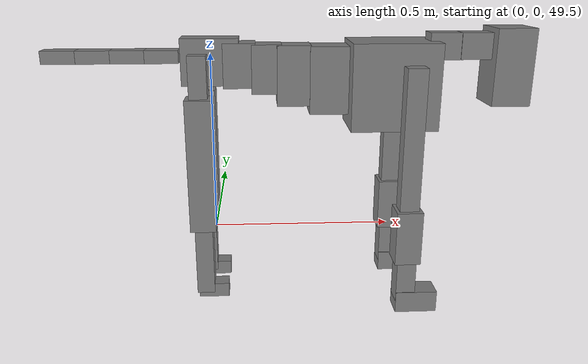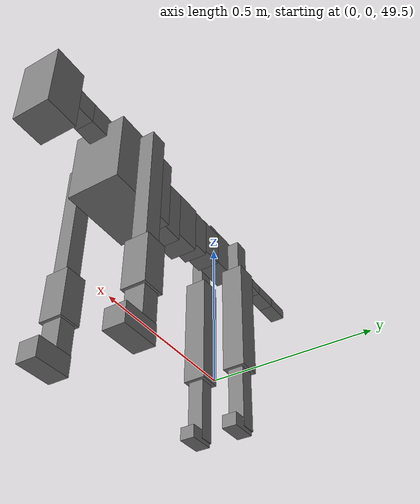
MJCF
<mujoco model="dog">

    <default>
        <joint armature="0.02" stiffness="1" damping="0.2" limited="true"/>
        <geom condim="3" friction="1 0.05 0.05" margin="0.01"/>
        <motor ctrllimited="true" ctrlrange="-1.0 1.0" forcelimited="true" gear="50"/>
    </default>

    <compiler inertiafromgeom="true" angle="radian"/>

    <option timestep="0.016" iterations="50" tolerance="1e-10" solver="Newton" jacobian="dense" cone="pyramidal"/>

    <size nconmax="20000" njmax="60000" nstack="5000000"/>
    <visual>
        <map force="0.1" zfar="30"/>
        <rgba haze="0.15 0.25 0.35 1"/>
        <quality shadowsize="2048"/>
        <global offwidth="800" offheight="800"/>
    </visual>

    <asset>
        <texture type="skybox" builtin="gradient" rgb1="0.3 0.5 0.7" rgb2="0 0 0" width="512" height="512"/>
        <texture name="texplane" type="2d" builtin="checker" rgb1=".2 .3 .4" rgb2=".1 0.15 0.2" width="512" height="512"
                 mark="cross" markrgb=".8 .8 .8"/>
        <texture name="texgeom" type="cube" builtin="flat" mark="cross" width="127" height="1278" rgb1="0.8 0.6 0.4"
                 rgb2="0.8 0.6 0.4" markrgb="1 1 1" random="0.01"/>

        <material name="matplane" reflectance="0.3" texture="texplane" texrepeat="1 1" texuniform="true"/>
        <material name="matgeom" texture="texgeom" texuniform="true" rgba="0.8 0.6 .4 1"/>
    </asset>

    <worldbody>
        <geom name="floor" pos="0 0 0" size="0 0 .25" type="plane" material="matplane" condim="3"/>

        <light directional="false" diffuse=".2 .2 .2" specular="0 0 0" pos="0 0 5" dir="0 0 -1" castshadow="false"/>
        <light mode="targetbodycom" target="torso" directional="false" diffuse=".8 .8 .8" specular="0.3 0.3 0.3"
               pos="0 0 4.0" dir="0 0 -1"/>

        <body name="root" pos="0 0 50">
            <freejoint name="root_1"/>
            <geom type="box" pos="0 0 -0.02" size="0.0774  0.0358  0.063" density="2030"/>

            <body name="spine1" pos="0.054 0 0">
                <joint name="spine1_y" axis="0 1 0" range="0 0.7" limited="true"/>
                <geom type="box" pos="0.02375 0 -0.03" size="0.04375  0.0375  0.05985" density="2030"/>

                <body name="spine2" pos="0.0612 0 0">
                    <joint name="spine2_y" axis="0 1 0" range="-0.15 0.15" limited="true"/>
                    <geom type="box" pos="0.03555  0  -0.04" size="0.04055  0.039  0.06615" density="2030"/>

                    <body name="spine3" pos="0.0730 0 0">
                        <joint name="spine3_y" axis="0 1 0" range="-0.15 0.15" limited="true"/>
                        <geom type="box" pos="0.03555  0  -0.057" size="0.04555  0.0445  0.081" density="2030"/>

                        <body name="spine4" pos="0.0780 0 0">
                            <joint name="spine4_y" axis="0 1 0" range="-0.15 0.15" limited="true"/>
                            <geom type="box" pos="0.05265  0  -0.07" size="0.05265  0.045  0.09135" density="2030"/>

                            <body name="torso" pos="0.1082 0 0">
                                <joint name="torso_y" axis="0 1 0" range="-0.15 0.15" limited="true"/>
                                <geom type="box" pos="0.11925  0  -0.085" size="0.11925  0.085  0.11745"
                                      density="2030"/>

                                <body name="neck1" pos="0.2160  0   0.0180">
                                    <joint name="neck1_y" axis="0 1 0" range="-1.2  -1" limited="true"/>
                                    <geom type="box" pos="0.0423  0  0" size="0.0423  0.03  0.036" density="2325"/>

                                    <body name="neck2" pos="0.0853  0  0">
                                        <joint name="neck2_y" axis="0 1 0" range="0.1  0" limited="true"/>
                                        <geom type="box" pos="0.0423  0  0" size="0.0423  0.03  0.036" density="2325"/>

                                        <body name="head" pos="0.0853  0  0">
                                            <joint name="head_y" axis="0 1 0" range="-0.3  -0.2" limited="true"/>
                                            <geom type="box" pos="0.0531  0  -0.055" size="0.0531  0.06  0.1044"
                                                  density="4030"/>

                                        </body>
                                    </body>
                                </body>

                                <body name="front_shoulder" pos="0.156  0   -0.0480">
                                    <joint name="front_shoulder_y" axis="0 1 0" range="-1 1.5" limited="true"/>
                                    <geom type="box" pos="0 0.13 -0.1797" size="0.0267  0.0229  0.2063" density="1158"/>
                                    <geom type="box" pos="0 -0.13 -0.1797" size="0.0267  0.0229  0.2063"
                                          density="1158"/>

                                    <body name="front_elbow" pos="0  0  -0.3594">
                                        <joint name="front_elbow_y" axis="0 1 0" range="-2 0" limited="true"/>
                                        <geom type="box" pos="0 0.13 -0.0756" size="0.0356  0.0364  0.0756"
                                              density="1081"/>
                                        <geom type="box" pos="0 -0.13 -0.0756" size="0.0356  0.0364  0.0756"
                                              density="1081"/>

                                        <body name="front_wrist" pos="0  0  -0.1512">
                                            <joint name="front_wrist_y" axis="0 1 0" range="-0.2 0" limited="true"/>
                                            <geom type="box" pos="0 0.13 -0.0521" size="0.0266  0.0295  0.0652"
                                                  density="1664"/>
                                            <geom type="box" pos="0 -0.13 -0.0521" size="0.0266  0.0295  0.0652"
                                                  density="1664"/>

                                            <body name="front_finger_end" pos="0  0  -0.1042">
                                                <joint name="front_finger_y" axis="0 1 0" range="-0.4 1"
                                                       limited="true"/>
                                                <geom type="box" pos="0.0316  0.13  -0.0151"
                                                      size="0.0579  0.0316  0.0301" density="1515"/>
                                                <geom type="box" pos="0.0316  -0.13  -0.0151"
                                                      size="0.0579  0.0316  0.0301" density="1515"/>

                                            </body>

                                        </body>
                                    </body>
                                </body>

                            </body>
                        </body>
                    </body>
                </body>
            </body>

            <body name="back_hip" pos="-0.03 0 -0.018">
                <joint name="back_hip_y" axis="0 1 0" range="-1.5 0.3" limited="true"/>
                <geom type="box" pos="0 0.07 -0.0528" size="0.0243  0.0191  0.0756" density="1154"/>
                <geom type="box" pos="0 -0.07 -0.0528" size="0.0243  0.0191  0.0756" density="1154"/>

                <body name="back_knee" pos="0  0  -0.1056">
                    <joint name="back_knee_y" axis="0 1 0" range="0 2.8" limited="true"/>
                    <geom type="box" pos="0 0.07 -0.1686" size="0.0358  0.0353  0.1841" density="1227"/>
                    <geom type="box" pos="0 -0.07 -0.1686" size="0.0358  0.0353  0.1841" density="1227"/>

                    <body name="back_ankle" pos="0  0  -0.3371">
                        <joint name="back_ankle_y" axis="0 1 0" range="-2.2 0" limited="true"/>
                        <geom type="box" pos="0 0.07 -0.0982" size="0.0246  0.0246  0.1094" density="1284"/>
                        <geom type="box" pos="0 -0.07 -0.0982" size="0.0246  0.0246  0.1094" density="1284"/>

                        <body name="back_toe_end" pos="0  0  -0.1964">
                            <joint name="back_toe_y" axis="0 1 0" range="-0.4 1" limited="true"/>
                            <geom type="box" pos="0.0228  0.07  -0.0050" size="0.0419  0.0228  0.0200" density="1515"/>
                            <geom type="box" pos="0.0228  -0.07  -0.0050" size="0.0419  0.0228  0.0200" density="1515"/>

                        </body>
                    </body>
                </body>
            </body>

            <body name="tail1" pos="-0.074 0 -0.006">
                <joint name="tail1_y" axis="0 1 0" range="-0.2 0.2" limited="true"/>
                <geom type="box" pos="-0.0536  0  0" size="0.045  0.025  0.0175" density="1587"/>

                <body name="tail2" pos="-0.09 0 0">
                    <joint name="tail2_y" axis="0 1 0" range="-0.2 0.2" limited="true"/>
                    <geom type="box" pos="-0.0536  0  0" size="0.045  0.025  0.0175" density="1587"/>

                    <body name="tail3" pos="-0.09 0 0">
                        <joint name="tail3_y" axis="0 1 0" range="-0.2 0.2" limited="true"/>
                        <geom type="box" pos="-0.0536  0  0" size="0.045  0.025  0.0175" density="1587"/>

                        <body name="tail4" pos="-0.09 0 0">
                            <joint name="tail4_y" axis="0 1 0" range="-0.2 0.2" limited="true"/>
                            <geom type="box" pos="-0.0536  0  0" size="0.045  0.025  0.0175" density="1587"/>

                        </body>
                    </body>
                </body>
            </body>
        </body>
    </worldbody>

    <actuator>
        <motor joint="spine1_y" forcerange="-150 150     "/>
        <motor joint="spine2_y" forcerange="-150 150     "/>
        <motor joint="spine3_y" forcerange="-150 150     "/>
        <motor joint="spine4_y" forcerange="-150 150     "/>
        <motor joint="torso_y" forcerange="-150 150     "/>
        <motor joint="neck1_y" forcerange="-100 100       "/>
        <motor joint="neck2_y" forcerange="-100 100       "/>
        <motor joint="head_y" forcerange="-150 150       "/>
        <motor joint="front_shoulder_y" forcerange="-105.27 147.09"/>
        <motor joint="front_elbow_y" forcerange="-192.16 172.77"/>
        <motor joint="front_wrist_y" forcerange="-117.23 118.86"/>
        <motor joint="front_finger_y" forcerange="-96.26 32.23"/>
        <motor joint="back_hip_y" forcerange="-225.41 228.74"/>
        <motor joint="back_knee_y" forcerange="-318.81 394.56"/>
        <motor joint="back_angle_y" forcerange="-98.52 194.92"/>
        <motor joint="back_toe_y" forcerange="-36.38 66.26"/>
        <motor joint="tail1_y" forcerange="-50 50     "/>
        <motor joint="tail2_y" forcerange="-50 50     "/>
        <motor joint="tail3_y" forcerange="-50 50     "/>
        <motor joint="tail4_y" forcerange="-50 50     "/>
    </actuator>
</mujoco>
